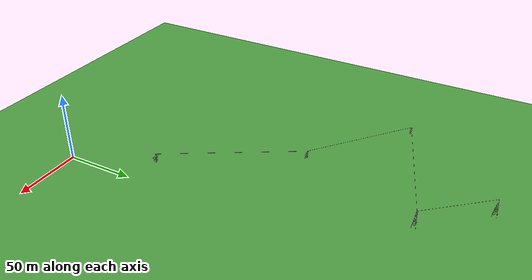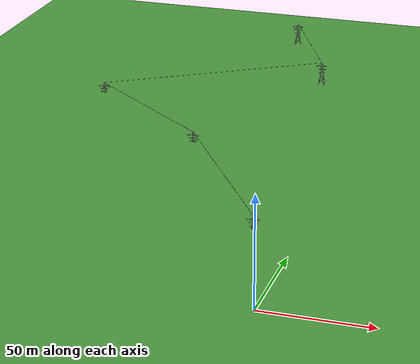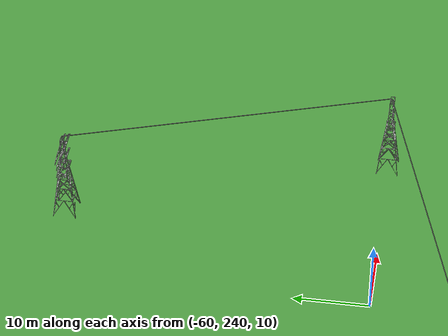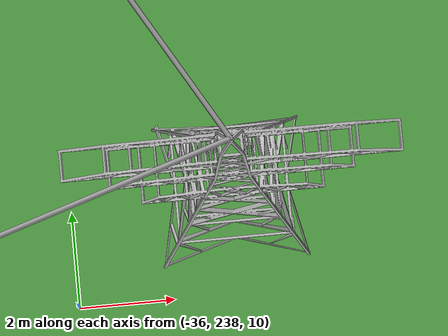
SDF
<sdf version="1.6">
 <world name="default">
  <physics type="ode">
   <ode>
    <solver><type>quick</type><iters>100</iters><sor>1.0</sor></solver>
    <constraints>
     <cfm>0.0</cfm>
     <erp>0.2</erp>
     <contact_max_correcting_vel>0.1</contact_max_correcting_vel>
     <contact_surface_layer>0.0</contact_surface_layer>
    </constraints>
   </ode>
   <real_time_update_rate>-1</real_time_update_rate>
  </physics>
  <gravity>0 0 -9.8</gravity>
  <include><uri>model://sun</uri></include>
  <model name="ground_plane">
   <static>true</static>
   <link name="link">
    <collision name="collision">
     <geometry><plane><normal>0 0 1</normal><size>5 5</size></plane></geometry>
     <surface><friction><ode><mu>100</mu><mu2>50</mu2></ode></friction></surface>
    </collision>
    <visual name="grass">
     <cast_shadows>false</cast_shadows>
     <geometry><plane><normal>0 0 1</normal><size>5 5</size></plane></geometry>
     <material>
      <script><uri>file://media/materials/scripts/gazebo.material</uri><name>Gazebo/Grass</name></script>
     </material>
    </visual>
   </link>
   <pose>0 0 6 0 0 0</pose>
  </model>
  <model name="torre_1">
   <include><uri>model://torrona</uri><pose>-19.9351 59.8366 0 0 -0 0</pose></include>
   <link name="link">
    <pose>-19.9351 59.8366 0 0 -0 0</pose>
    <velocity>0 0 0 0 -0 0</velocity>
    <acceleration>0 0 0 0 -0 0</acceleration>
    <wrench>0 0 0 0 -0 0</wrench>
   </link>
  </model>
  <model name="torre_2">
   <include><uri>model://torrona</uri><pose>-76.9707 149.675 -1.1583 0 -0 0</pose></include>
  </model>
  <model name="torre_3">
   <include><uri>model://torrona</uri><pose>-145.329 204.481 -1.1583 0 -0 0</pose></include>
  </model>
  <model name="torre_4">
   <include><uri>model://torrona</uri><pose>-57.8016 278.48 18.0276 0 -0 0</pose></include>
  </model>
  <model name="torre_5">
   <include><uri>model://torrona</uri><pose>-34.103 238.625 10.3422 0 -0 0</pose></include>
  </model>
  <model name="cabo_1">
   <pose>-47.001513 106.2363165 11.689681 0 -1.5815 -1.00517</pose>
   <static>1</static>
   <link name="link">
    <visual name="visual">
     <geometry><cylinder><radius>0.05</radius><length>106.431</length></cylinder></geometry>
     <material>
      <script><name>Gazebo/Grey</name><uri>file://media/materials/scripts/gazebo.material</uri></script>
     </material>
    </visual>
    <collision name="collision">
     <geometry><cylinder><radius>0.05</radius><length>106.431</length></cylinder></geometry>
    </collision>
   </link>
  </model>
  <model name="cabo_2">
   <pose>-109.688183 178.555313 11.1238165 0 -1.5709 -3.8174</pose>
   <static>1</static>
   <link name="link">
    <visual name="visual">
     <geometry><cylinder><radius>0.05</radius><length>87.58</length></cylinder></geometry>
     <material>
      <script><name>Gazebo/Grey</name><uri>file://media/materials/scripts/gazebo.material</uri></script>
     </material>
    </visual>
    <collision name="collision">
     <geometry><cylinder><radius>0.05</radius><length>87.58</length></cylinder></geometry>
    </collision>
   </link>
  </model>
  <model name="cabo_3">
   <pose>-88.2431625 223.0336455 16.883937 0 -1.472 -2.843</pose>
   <static>1</static>
   <link name="link">
    <visual name="visual">
     <geometry><cylinder><radius>0.05</radius><length>116.92</length></cylinder></geometry>
     <material>
      <script><name>Gazebo/Grey</name><uri>file://media/materials/scripts/gazebo.material</uri></script>
     </material>
    </visual>
    <collision name="collision">
     <geometry><cylinder><radius>0.05</radius><length>116.92</length></cylinder></geometry>
    </collision>
   </link>
  </model>
  <model name="cabo_4">
   <pose>-44.4858725 260.03862 26.4829325 0 -1.406 -1.0339</pose>
   <static>1</static>
   <link name="link">
    <visual name="visual">
     <geometry><cylinder><radius>0.05</radius><length>46.99</length></cylinder></geometry>
     <material>
      <script><name>Gazebo/Grey</name><uri>file://media/materials/scripts/gazebo.material</uri></script>
     </material>
    </visual>
    <collision name="collision">
     <geometry><cylinder><radius>0.05</radius><length>46.99</length></cylinder></geometry>
    </collision>
   </link>
  </model>
 </world>
</sdf>

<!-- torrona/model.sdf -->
<sdf version="1.6">
  <model name="torrona">
    <static>true</static>
    <link name="link">
      <collision name="collision">
        <geometry>
          <mesh>
            <scale>0.1 0.1 0.1</scale>
            <uri>model://torrona/meshes/torrona.stl</uri>
          </mesh>
        </geometry>
      </collision>

      <visual name="visual">
        <geometry>
          <mesh>
            <scale>0.1 0.1 0.1</scale>
            <uri>model://torrona/meshes/torrona.stl</uri>
          </mesh>
        </geometry>
      </visual>
    </link>
  </model>
</sdf>
